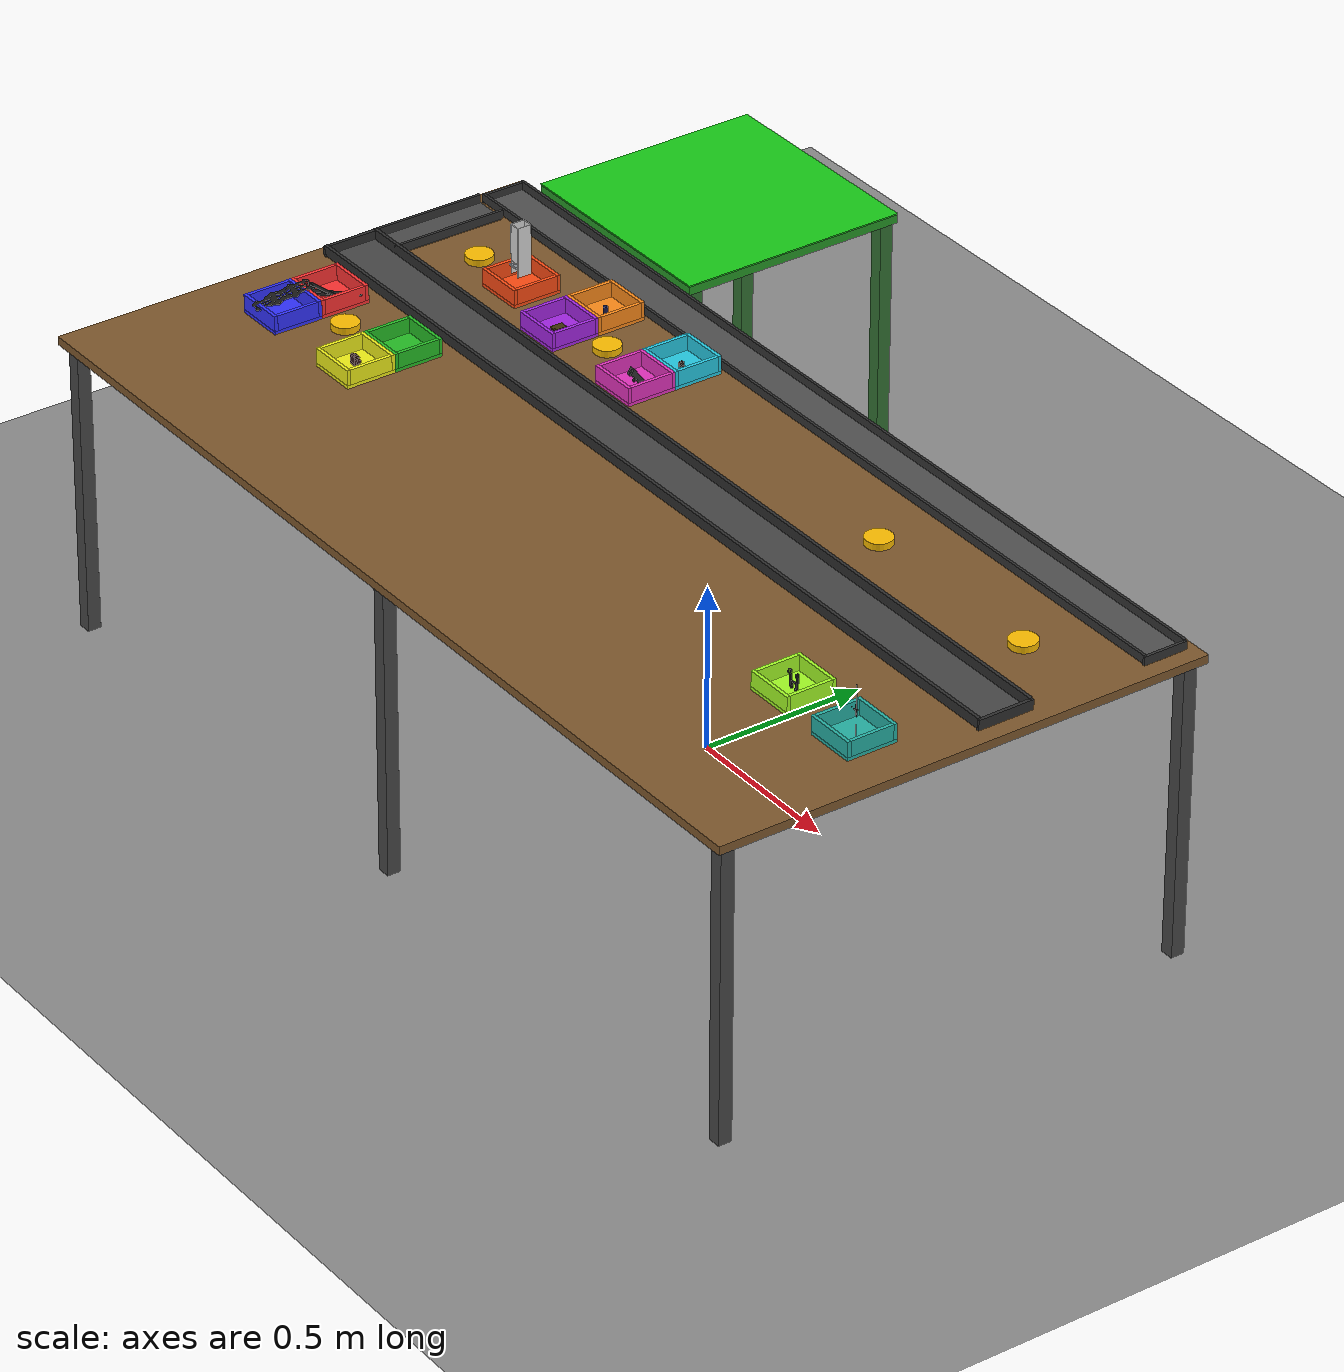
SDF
<sdf version="1.10">
 <world name="frame_assembly_cell">
  <physics name="2ms" type="ignored">
   <max_step_size>0.002</max_step_size>
   <real_time_factor>1.0</real_time_factor>
  </physics>
  <plugin filename="gz-sim-physics-system" name="gz::sim::systems::Physics"/>
  <plugin filename="gz-sim-user-commands-system" name="gz::sim::systems::UserCommands"/>
  <plugin filename="gz-sim-scene-broadcaster-system" name="gz::sim::systems::SceneBroadcaster"/>
  <plugin filename="gz-sim-sensors-system" name="gz::sim::systems::Sensors">
   <render_engine>ogre2</render_engine>
  </plugin>
  <light type="directional" name="sun">
   <pose>0 0 10 0 0 0</pose>
   <diffuse>0.8 0.8 0.8 1</diffuse>
   <specular>0.2 0.2 0.2 1</specular>
   <direction>-0.5 0.1 -0.9</direction>
  </light>
  <model name="ground_plane">
   <static>true</static>
   <link name="link">
    <collision name="collision">
     <geometry><plane><normal>0 0 1</normal><size>30 30</size></plane></geometry>
    </collision>
    <visual name="visual">
     <geometry><plane><normal>0 0 1</normal><size>30 30</size></plane></geometry>
     <material><ambient>0.38 0.38 0.38 1</ambient><diffuse>0.55 0.55 0.55 1</diffuse></material>
    </visual>
   </link>
  </model>
  <include><uri>model://assembly_table</uri><name>assembly_table</name></include>
  <include><uri>model://conveyor_main</uri><name>conveyor_main</name><pose>0 -0.15 0.900 0 0 0</pose></include>
  <include>
   <uri>model://conveyor_return</uri>
   <name>conveyor_return</name>
   <pose>0 0.35 0.900 0 0 0</pose>
  </include>
  <include><uri>model://conveyor_side</uri><name>conveyor_side</name><pose>-1.4 0.1 0.900 0 0 0</pose></include>
  <include><uri>model://finished_area</uri><name>finished_area</name><pose>-1.1 0.825 0 0 0 0</pose></include>
  <include><uri>model://screw_feeder</uri><name>screw_feeder</name><pose>-1.0 0.1 0.950 0 0 0</pose></include>
  <model name="station_marker_1">
   <static>true</static>
   <pose>-1.2 0.1 0.900 0 0 0</pose>
   <link name="disc">
    <pose>0 0 0.010 0 0 0</pose>
    <collision name="col">
     <geometry><cylinder><radius>0.04</radius><length>0.020</length></cylinder></geometry>
    </collision>
    <visual name="vis">
     <geometry><cylinder><radius>0.04</radius><length>0.020</length></cylinder></geometry>
     <material><ambient>0.80 0.60 0.00 1</ambient><diffuse>1.00 0.75 0.00 1</diffuse></material>
    </visual>
   </link>
  </model>
  <model name="station_marker_2">
   <static>true</static>
   <pose>-1.1 -0.4 0.900 0 0 0</pose>
   <link name="disc">
    <pose>0 0 0.010 0 0 0</pose>
    <collision name="col">
     <geometry><cylinder><radius>0.04</radius><length>0.020</length></cylinder></geometry>
    </collision>
    <visual name="vis">
     <geometry><cylinder><radius>0.04</radius><length>0.020</length></cylinder></geometry>
     <material><ambient>0.80 0.60 0.00 1</ambient><diffuse>1.00 0.75 0.00 1</diffuse></material>
    </visual>
   </link>
  </model>
  <model name="station_marker_3">
   <static>true</static>
   <pose>-0.6 0.1 0.900 0 0 0</pose>
   <link name="disc">
    <pose>0 0 0.010 0 0 0</pose>
    <collision name="col">
     <geometry><cylinder><radius>0.04</radius><length>0.020</length></cylinder></geometry>
    </collision>
    <visual name="vis">
     <geometry><cylinder><radius>0.04</radius><length>0.020</length></cylinder></geometry>
     <material><ambient>0.80 0.60 0.00 1</ambient><diffuse>1.00 0.75 0.00 1</diffuse></material>
    </visual>
   </link>
  </model>
  <model name="station_marker_4">
   <static>true</static>
   <pose>0.6 0.1 0.900 0 0 0</pose>
   <link name="disc">
    <pose>0 0 0.010 0 0 0</pose>
    <collision name="col">
     <geometry><cylinder><radius>0.04</radius><length>0.020</length></cylinder></geometry>
    </collision>
    <visual name="vis">
     <geometry><cylinder><radius>0.04</radius><length>0.020</length></cylinder></geometry>
     <material><ambient>0.80 0.60 0.00 1</ambient><diffuse>1.00 0.75 0.00 1</diffuse></material>
    </visual>
   </link>
  </model>
  <model name="station_marker_5">
   <static>true</static>
   <pose>1.2 0.1 0.900 0 0 0</pose>
   <link name="disc">
    <pose>0 0 0.010 0 0 0</pose>
    <collision name="col">
     <geometry><cylinder><radius>0.04</radius><length>0.020</length></cylinder></geometry>
    </collision>
    <visual name="vis">
     <geometry><cylinder><radius>0.04</radius><length>0.020</length></cylinder></geometry>
     <material><ambient>0.80 0.60 0.00 1</ambient><diffuse>1.00 0.75 0.00 1</diffuse></material>
    </visual>
   </link>
  </model>
  <model name="bin_A">
   <static>true</static>
   <pose>-1.25 -0.35 0.900 0 0 0</pose>
   <link name="floor">
    <pose>0 0 0.005 0 0 0</pose>
    <collision name="col"><geometry><box><size>0.15 0.15 0.010</size></box></geometry></collision>
    <visual name="vis">
     <geometry><box><size>0.15 0.15 0.010</size></box></geometry>
     <material><ambient>0.80 0.10 0.10 1</ambient><diffuse>1.00 0.20 0.20 1</diffuse></material>
    </visual>
   </link>
   <link name="wall_front">
    <pose>0 -0.070 0.0325 0 0 0</pose>
    <collision name="col"><geometry><box><size>0.15 0.010 0.045</size></box></geometry></collision>
    <visual name="vis">
     <geometry><box><size>0.15 0.010 0.045</size></box></geometry>
     <material><ambient>0.80 0.10 0.10 1</ambient><diffuse>1.00 0.20 0.20 1</diffuse></material>
    </visual>
   </link>
   <link name="wall_back">
    <pose>0 0.070 0.0325 0 0 0</pose>
    <collision name="col"><geometry><box><size>0.15 0.010 0.045</size></box></geometry></collision>
    <visual name="vis">
     <geometry><box><size>0.15 0.010 0.045</size></box></geometry>
     <material><ambient>0.80 0.10 0.10 1</ambient><diffuse>1.00 0.20 0.20 1</diffuse></material>
    </visual>
   </link>
   <link name="wall_left">
    <pose>-0.070 0 0.0325 0 0 0</pose>
    <collision name="col"><geometry><box><size>0.010 0.130 0.045</size></box></geometry></collision>
    <visual name="vis">
     <geometry><box><size>0.010 0.130 0.045</size></box></geometry>
     <material><ambient>0.80 0.10 0.10 1</ambient><diffuse>1.00 0.20 0.20 1</diffuse></material>
    </visual>
   </link>
   <link name="wall_right">
    <pose>0.070 0 0.0325 0 0 0</pose>
    <collision name="col"><geometry><box><size>0.010 0.130 0.045</size></box></geometry></collision>
    <visual name="vis">
     <geometry><box><size>0.010 0.130 0.045</size></box></geometry>
     <material><ambient>0.80 0.10 0.10 1</ambient><diffuse>1.00 0.20 0.20 1</diffuse></material>
    </visual>
   </link>
  </model>
  <model name="bin_B">
   <static>true</static>
   <pose>-1.25 -0.5 0.900 0 0 0</pose>
   <link name="floor">
    <pose>0 0 0.005 0 0 0</pose>
    <collision name="col"><geometry><box><size>0.15 0.15 0.010</size></box></geometry></collision>
    <visual name="vis">
     <geometry><box><size>0.15 0.15 0.010</size></box></geometry>
     <material><ambient>0.10 0.10 0.80 1</ambient><diffuse>0.20 0.20 1.00 1</diffuse></material>
    </visual>
   </link>
   <link name="wall_front">
    <pose>0 -0.070 0.0325 0 0 0</pose>
    <collision name="col"><geometry><box><size>0.15 0.010 0.045</size></box></geometry></collision>
    <visual name="vis">
     <geometry><box><size>0.15 0.010 0.045</size></box></geometry>
     <material><ambient>0.10 0.10 0.80 1</ambient><diffuse>0.20 0.20 1.00 1</diffuse></material>
    </visual>
   </link>
   <link name="wall_back">
    <pose>0 0.070 0.0325 0 0 0</pose>
    <collision name="col"><geometry><box><size>0.15 0.010 0.045</size></box></geometry></collision>
    <visual name="vis">
     <geometry><box><size>0.15 0.010 0.045</size></box></geometry>
     <material><ambient>0.10 0.10 0.80 1</ambient><diffuse>0.20 0.20 1.00 1</diffuse></material>
    </visual>
   </link>
   <link name="wall_left">
    <pose>-0.070 0 0.0325 0 0 0</pose>
    <collision name="col"><geometry><box><size>0.010 0.130 0.045</size></box></geometry></collision>
    <visual name="vis">
     <geometry><box><size>0.010 0.130 0.045</size></box></geometry>
     <material><ambient>0.10 0.10 0.80 1</ambient><diffuse>0.20 0.20 1.00 1</diffuse></material>
    </visual>
   </link>
   <link name="wall_right">
    <pose>0.070 0 0.0325 0 0 0</pose>
    <collision name="col"><geometry><box><size>0.010 0.130 0.045</size></box></geometry></collision>
    <visual name="vis">
     <geometry><box><size>0.010 0.130 0.045</size></box></geometry>
     <material><ambient>0.10 0.10 0.80 1</ambient><diffuse>0.20 0.20 1.00 1</diffuse></material>
    </visual>
   </link>
  </model>
  <model name="bin_C">
   <static>true</static>
   <pose>-0.9 -0.35 0.900 0 0 0</pose>
   <link name="floor">
    <pose>0 0 0.005 0 0 0</pose>
    <collision name="col"><geometry><box><size>0.15 0.15 0.010</size></box></geometry></collision>
    <visual name="vis">
     <geometry><box><size>0.15 0.15 0.010</size></box></geometry>
     <material><ambient>0.10 0.55 0.10 1</ambient><diffuse>0.15 0.75 0.15 1</diffuse></material>
    </visual>
   </link>
   <link name="wall_front">
    <pose>0 -0.070 0.0325 0 0 0</pose>
    <collision name="col"><geometry><box><size>0.15 0.010 0.045</size></box></geometry></collision>
    <visual name="vis">
     <geometry><box><size>0.15 0.010 0.045</size></box></geometry>
     <material><ambient>0.10 0.55 0.10 1</ambient><diffuse>0.15 0.75 0.15 1</diffuse></material>
    </visual>
   </link>
   <link name="wall_back">
    <pose>0 0.070 0.0325 0 0 0</pose>
    <collision name="col"><geometry><box><size>0.15 0.010 0.045</size></box></geometry></collision>
    <visual name="vis">
     <geometry><box><size>0.15 0.010 0.045</size></box></geometry>
     <material><ambient>0.10 0.55 0.10 1</ambient><diffuse>0.15 0.75 0.15 1</diffuse></material>
    </visual>
   </link>
   <link name="wall_left">
    <pose>-0.070 0 0.0325 0 0 0</pose>
    <collision name="col"><geometry><box><size>0.010 0.130 0.045</size></box></geometry></collision>
    <visual name="vis">
     <geometry><box><size>0.010 0.130 0.045</size></box></geometry>
     <material><ambient>0.10 0.55 0.10 1</ambient><diffuse>0.15 0.75 0.15 1</diffuse></material>
    </visual>
   </link>
   <link name="wall_right">
    <pose>0.070 0 0.0325 0 0 0</pose>
    <collision name="col"><geometry><box><size>0.010 0.130 0.045</size></box></geometry></collision>
    <visual name="vis">
     <geometry><box><size>0.010 0.130 0.045</size></box></geometry>
     <material><ambient>0.10 0.55 0.10 1</ambient><diffuse>0.15 0.75 0.15 1</diffuse></material>
    </visual>
   </link>
  </model>
  <model name="bin_D">
   <static>true</static>
   <pose>-0.9 -0.5 0.900 0 0 0</pose>
   <link name="floor">
    <pose>0 0 0.005 0 0 0</pose>
    <collision name="col"><geometry><box><size>0.15 0.15 0.010</size></box></geometry></collision>
    <visual name="vis">
     <geometry><box><size>0.15 0.15 0.010</size></box></geometry>
     <material><ambient>0.75 0.75 0.05 1</ambient><diffuse>0.95 0.95 0.10 1</diffuse></material>
    </visual>
   </link>
   <link name="wall_front">
    <pose>0 -0.070 0.0325 0 0 0</pose>
    <collision name="col"><geometry><box><size>0.15 0.010 0.045</size></box></geometry></collision>
    <visual name="vis">
     <geometry><box><size>0.15 0.010 0.045</size></box></geometry>
     <material><ambient>0.75 0.75 0.05 1</ambient><diffuse>0.95 0.95 0.10 1</diffuse></material>
    </visual>
   </link>
   <link name="wall_back">
    <pose>0 0.070 0.0325 0 0 0</pose>
    <collision name="col"><geometry><box><size>0.15 0.010 0.045</size></box></geometry></collision>
    <visual name="vis">
     <geometry><box><size>0.15 0.010 0.045</size></box></geometry>
     <material><ambient>0.75 0.75 0.05 1</ambient><diffuse>0.95 0.95 0.10 1</diffuse></material>
    </visual>
   </link>
   <link name="wall_left">
    <pose>-0.070 0 0.0325 0 0 0</pose>
    <collision name="col"><geometry><box><size>0.010 0.130 0.045</size></box></geometry></collision>
    <visual name="vis">
     <geometry><box><size>0.010 0.130 0.045</size></box></geometry>
     <material><ambient>0.75 0.75 0.05 1</ambient><diffuse>0.95 0.95 0.10 1</diffuse></material>
    </visual>
   </link>
   <link name="wall_right">
    <pose>0.070 0 0.0325 0 0 0</pose>
    <collision name="col"><geometry><box><size>0.010 0.130 0.045</size></box></geometry></collision>
    <visual name="vis">
     <geometry><box><size>0.010 0.130 0.045</size></box></geometry>
     <material><ambient>0.75 0.75 0.05 1</ambient><diffuse>0.95 0.95 0.10 1</diffuse></material>
    </visual>
   </link>
  </model>
  <model name="bin_E">
   <static>true</static>
   <pose>-0.75 0.2 0.900 0 0 0</pose>
   <link name="floor">
    <pose>0 0 0.005 0 0 0</pose>
    <collision name="col"><geometry><box><size>0.15 0.15 0.010</size></box></geometry></collision>
    <visual name="vis">
     <geometry><box><size>0.15 0.15 0.010</size></box></geometry>
     <material><ambient>0.80 0.42 0.05 1</ambient><diffuse>1.00 0.55 0.10 1</diffuse></material>
    </visual>
   </link>
   <link name="wall_front">
    <pose>0 -0.070 0.0325 0 0 0</pose>
    <collision name="col"><geometry><box><size>0.15 0.010 0.045</size></box></geometry></collision>
    <visual name="vis">
     <geometry><box><size>0.15 0.010 0.045</size></box></geometry>
     <material><ambient>0.80 0.42 0.05 1</ambient><diffuse>1.00 0.55 0.10 1</diffuse></material>
    </visual>
   </link>
   <link name="wall_back">
    <pose>0 0.070 0.0325 0 0 0</pose>
    <collision name="col"><geometry><box><size>0.15 0.010 0.045</size></box></geometry></collision>
    <visual name="vis">
     <geometry><box><size>0.15 0.010 0.045</size></box></geometry>
     <material><ambient>0.80 0.42 0.05 1</ambient><diffuse>1.00 0.55 0.10 1</diffuse></material>
    </visual>
   </link>
   <link name="wall_left">
    <pose>-0.070 0 0.0325 0 0 0</pose>
    <collision name="col"><geometry><box><size>0.010 0.130 0.045</size></box></geometry></collision>
    <visual name="vis">
     <geometry><box><size>0.010 0.130 0.045</size></box></geometry>
     <material><ambient>0.80 0.42 0.05 1</ambient><diffuse>1.00 0.55 0.10 1</diffuse></material>
    </visual>
   </link>
   <link name="wall_right">
    <pose>0.070 0 0.0325 0 0 0</pose>
    <collision name="col"><geometry><box><size>0.010 0.130 0.045</size></box></geometry></collision>
    <visual name="vis">
     <geometry><box><size>0.010 0.130 0.045</size></box></geometry>
     <material><ambient>0.80 0.42 0.05 1</ambient><diffuse>1.00 0.55 0.10 1</diffuse></material>
    </visual>
   </link>
  </model>
  <model name="bin_F">
   <static>true</static>
   <pose>-0.75 0.05 0.900 0 0 0</pose>
   <link name="floor">
    <pose>0 0 0.005 0 0 0</pose>
    <collision name="col"><geometry><box><size>0.15 0.15 0.010</size></box></geometry></collision>
    <visual name="vis">
     <geometry><box><size>0.15 0.15 0.010</size></box></geometry>
     <material><ambient>0.50 0.10 0.70 1</ambient><diffuse>0.65 0.15 0.90 1</diffuse></material>
    </visual>
   </link>
   <link name="wall_front">
    <pose>0 -0.070 0.0325 0 0 0</pose>
    <collision name="col"><geometry><box><size>0.15 0.010 0.045</size></box></geometry></collision>
    <visual name="vis">
     <geometry><box><size>0.15 0.010 0.045</size></box></geometry>
     <material><ambient>0.50 0.10 0.70 1</ambient><diffuse>0.65 0.15 0.90 1</diffuse></material>
    </visual>
   </link>
   <link name="wall_back">
    <pose>0 0.070 0.0325 0 0 0</pose>
    <collision name="col"><geometry><box><size>0.15 0.010 0.045</size></box></geometry></collision>
    <visual name="vis">
     <geometry><box><size>0.15 0.010 0.045</size></box></geometry>
     <material><ambient>0.50 0.10 0.70 1</ambient><diffuse>0.65 0.15 0.90 1</diffuse></material>
    </visual>
   </link>
   <link name="wall_left">
    <pose>-0.070 0 0.0325 0 0 0</pose>
    <collision name="col"><geometry><box><size>0.010 0.130 0.045</size></box></geometry></collision>
    <visual name="vis">
     <geometry><box><size>0.010 0.130 0.045</size></box></geometry>
     <material><ambient>0.50 0.10 0.70 1</ambient><diffuse>0.65 0.15 0.90 1</diffuse></material>
    </visual>
   </link>
   <link name="wall_right">
    <pose>0.070 0 0.0325 0 0 0</pose>
    <collision name="col"><geometry><box><size>0.010 0.130 0.045</size></box></geometry></collision>
    <visual name="vis">
     <geometry><box><size>0.010 0.130 0.045</size></box></geometry>
     <material><ambient>0.50 0.10 0.70 1</ambient><diffuse>0.65 0.15 0.90 1</diffuse></material>
    </visual>
   </link>
  </model>
  <model name="bin_G">
   <static>true</static>
   <pose>-0.4 0.2 0.900 0 0 0</pose>
   <link name="floor">
    <pose>0 0 0.005 0 0 0</pose>
    <collision name="col"><geometry><box><size>0.15 0.15 0.010</size></box></geometry></collision>
    <visual name="vis">
     <geometry><box><size>0.15 0.15 0.010</size></box></geometry>
     <material><ambient>0.10 0.60 0.70 1</ambient><diffuse>0.15 0.80 0.90 1</diffuse></material>
    </visual>
   </link>
   <link name="wall_front">
    <pose>0 -0.070 0.0325 0 0 0</pose>
    <collision name="col"><geometry><box><size>0.15 0.010 0.045</size></box></geometry></collision>
    <visual name="vis">
     <geometry><box><size>0.15 0.010 0.045</size></box></geometry>
     <material><ambient>0.10 0.60 0.70 1</ambient><diffuse>0.15 0.80 0.90 1</diffuse></material>
    </visual>
   </link>
   <link name="wall_back">
    <pose>0 0.070 0.0325 0 0 0</pose>
    <collision name="col"><geometry><box><size>0.15 0.010 0.045</size></box></geometry></collision>
    <visual name="vis">
     <geometry><box><size>0.15 0.010 0.045</size></box></geometry>
     <material><ambient>0.10 0.60 0.70 1</ambient><diffuse>0.15 0.80 0.90 1</diffuse></material>
    </visual>
   </link>
   <link name="wall_left">
    <pose>-0.070 0 0.0325 0 0 0</pose>
    <collision name="col"><geometry><box><size>0.010 0.130 0.045</size></box></geometry></collision>
    <visual name="vis">
     <geometry><box><size>0.010 0.130 0.045</size></box></geometry>
     <material><ambient>0.10 0.60 0.70 1</ambient><diffuse>0.15 0.80 0.90 1</diffuse></material>
    </visual>
   </link>
   <link name="wall_right">
    <pose>0.070 0 0.0325 0 0 0</pose>
    <collision name="col"><geometry><box><size>0.010 0.130 0.045</size></box></geometry></collision>
    <visual name="vis">
     <geometry><box><size>0.010 0.130 0.045</size></box></geometry>
     <material><ambient>0.10 0.60 0.70 1</ambient><diffuse>0.15 0.80 0.90 1</diffuse></material>
    </visual>
   </link>
  </model>
  <model name="bin_H">
   <static>true</static>
   <pose>-0.4 0.05 0.900 0 0 0</pose>
   <link name="floor">
    <pose>0 0 0.005 0 0 0</pose>
    <collision name="col"><geometry><box><size>0.15 0.15 0.010</size></box></geometry></collision>
    <visual name="vis">
     <geometry><box><size>0.15 0.15 0.010</size></box></geometry>
     <material><ambient>0.75 0.10 0.60 1</ambient><diffuse>0.90 0.20 0.75 1</diffuse></material>
    </visual>
   </link>
   <link name="wall_front">
    <pose>0 -0.070 0.0325 0 0 0</pose>
    <collision name="col"><geometry><box><size>0.15 0.010 0.045</size></box></geometry></collision>
    <visual name="vis">
     <geometry><box><size>0.15 0.010 0.045</size></box></geometry>
     <material><ambient>0.75 0.10 0.60 1</ambient><diffuse>0.90 0.20 0.75 1</diffuse></material>
    </visual>
   </link>
   <link name="wall_back">
    <pose>0 0.070 0.0325 0 0 0</pose>
    <collision name="col"><geometry><box><size>0.15 0.010 0.045</size></box></geometry></collision>
    <visual name="vis">
     <geometry><box><size>0.15 0.010 0.045</size></box></geometry>
     <material><ambient>0.75 0.10 0.60 1</ambient><diffuse>0.90 0.20 0.75 1</diffuse></material>
    </visual>
   </link>
   <link name="wall_left">
    <pose>-0.070 0 0.0325 0 0 0</pose>
    <collision name="col"><geometry><box><size>0.010 0.130 0.045</size></box></geometry></collision>
    <visual name="vis">
     <geometry><box><size>0.010 0.130 0.045</size></box></geometry>
     <material><ambient>0.75 0.10 0.60 1</ambient><diffuse>0.90 0.20 0.75 1</diffuse></material>
    </visual>
   </link>
   <link name="wall_right">
    <pose>0.070 0 0.0325 0 0 0</pose>
    <collision name="col"><geometry><box><size>0.010 0.130 0.045</size></box></geometry></collision>
    <visual name="vis">
     <geometry><box><size>0.010 0.130 0.045</size></box></geometry>
     <material><ambient>0.75 0.10 0.60 1</ambient><diffuse>0.90 0.20 0.75 1</diffuse></material>
    </visual>
   </link>
  </model>
  <model name="bin_I">
   <static>true</static>
   <pose>1.05 -0.50 0.900 0 0 0</pose>
   <link name="floor">
    <pose>0 0 0.005 0 0 0</pose>
    <collision name="col"><geometry><box><size>0.15 0.15 0.010</size></box></geometry></collision>
    <visual name="vis">
     <geometry><box><size>0.15 0.15 0.010</size></box></geometry>
     <material><ambient>0.50 0.80 0.10 1</ambient><diffuse>0.65 1.00 0.15 1</diffuse></material>
    </visual>
   </link>
   <link name="wall_front">
    <pose>0 -0.070 0.0325 0 0 0</pose>
    <collision name="col"><geometry><box><size>0.15 0.010 0.045</size></box></geometry></collision>
    <visual name="vis">
     <geometry><box><size>0.15 0.010 0.045</size></box></geometry>
     <material><ambient>0.50 0.80 0.10 1</ambient><diffuse>0.65 1.00 0.15 1</diffuse></material>
    </visual>
   </link>
   <link name="wall_back">
    <pose>0 0.070 0.0325 0 0 0</pose>
    <collision name="col"><geometry><box><size>0.15 0.010 0.045</size></box></geometry></collision>
    <visual name="vis">
     <geometry><box><size>0.15 0.010 0.045</size></box></geometry>
     <material><ambient>0.50 0.80 0.10 1</ambient><diffuse>0.65 1.00 0.15 1</diffuse></material>
    </visual>
   </link>
   <link name="wall_left">
    <pose>-0.070 0 0.0325 0 0 0</pose>
    <collision name="col"><geometry><box><size>0.010 0.130 0.045</size></box></geometry></collision>
    <visual name="vis">
     <geometry><box><size>0.010 0.130 0.045</size></box></geometry>
     <material><ambient>0.50 0.80 0.10 1</ambient><diffuse>0.65 1.00 0.15 1</diffuse></material>
    </visual>
   </link>
   <link name="wall_right">
    <pose>0.070 0 0.0325 0 0 0</pose>
    <collision name="col"><geometry><box><size>0.010 0.130 0.045</size></box></geometry></collision>
    <visual name="vis">
     <geometry><box><size>0.010 0.130 0.045</size></box></geometry>
     <material><ambient>0.50 0.80 0.10 1</ambient><diffuse>0.65 1.00 0.15 1</diffuse></material>
    </visual>
   </link>
  </model>
  <model name="bin_J">
   <static>true</static>
   <pose>1.3 -0.50 0.900 0 0 0</pose>
   <link name="floor">
    <pose>0 0 0.005 0 0 0</pose>
    <collision name="col"><geometry><box><size>0.15 0.15 0.010</size></box></geometry></collision>
    <visual name="vis">
     <geometry><box><size>0.15 0.15 0.010</size></box></geometry>
     <material><ambient>0.10 0.50 0.50 1</ambient><diffuse>0.15 0.70 0.65 1</diffuse></material>
    </visual>
   </link>
   <link name="wall_front">
    <pose>0 -0.070 0.0325 0 0 0</pose>
    <collision name="col"><geometry><box><size>0.15 0.010 0.045</size></box></geometry></collision>
    <visual name="vis">
     <geometry><box><size>0.15 0.010 0.045</size></box></geometry>
     <material><ambient>0.10 0.50 0.50 1</ambient><diffuse>0.15 0.70 0.65 1</diffuse></material>
    </visual>
   </link>
   <link name="wall_back">
    <pose>0 0.070 0.0325 0 0 0</pose>
    <collision name="col"><geometry><box><size>0.15 0.010 0.045</size></box></geometry></collision>
    <visual name="vis">
     <geometry><box><size>0.15 0.010 0.045</size></box></geometry>
     <material><ambient>0.10 0.50 0.50 1</ambient><diffuse>0.15 0.70 0.65 1</diffuse></material>
    </visual>
   </link>
   <link name="wall_left">
    <pose>-0.070 0 0.0325 0 0 0</pose>
    <collision name="col"><geometry><box><size>0.010 0.130 0.045</size></box></geometry></collision>
    <visual name="vis">
     <geometry><box><size>0.010 0.130 0.045</size></box></geometry>
     <material><ambient>0.10 0.50 0.50 1</ambient><diffuse>0.15 0.70 0.65 1</diffuse></material>
    </visual>
   </link>
   <link name="wall_right">
    <pose>0.070 0 0.0325 0 0 0</pose>
    <collision name="col"><geometry><box><size>0.010 0.130 0.045</size></box></geometry></collision>
    <visual name="vis">
     <geometry><box><size>0.010 0.130 0.045</size></box></geometry>
     <material><ambient>0.10 0.50 0.50 1</ambient><diffuse>0.15 0.70 0.65 1</diffuse></material>
    </visual>
   </link>
  </model>
  <model name="bin_screw">
   <static>true</static>
   <pose>-1.0 0.1 0.900 0 0 0</pose>
   <link name="floor">
    <pose>0 0 0.005 0 0 0</pose>
    <collision name="col"><geometry><box><size>0.15 0.15 0.010</size></box></geometry></collision>
    <visual name="vis">
     <geometry><box><size>0.15 0.15 0.010</size></box></geometry>
     <material><ambient>0.85 0.22 0.05 1</ambient><diffuse>1.00 0.30 0.08 1</diffuse></material>
    </visual>
   </link>
   <link name="wall_front">
    <pose>0 -0.070 0.0325 0 0 0</pose>
    <collision name="col"><geometry><box><size>0.15 0.010 0.045</size></box></geometry></collision>
    <visual name="vis">
     <geometry><box><size>0.15 0.010 0.045</size></box></geometry>
     <material><ambient>0.85 0.22 0.05 1</ambient><diffuse>1.00 0.30 0.08 1</diffuse></material>
    </visual>
   </link>
   <link name="wall_back">
    <pose>0 0.070 0.0325 0 0 0</pose>
    <collision name="col"><geometry><box><size>0.15 0.010 0.045</size></box></geometry></collision>
    <visual name="vis">
     <geometry><box><size>0.15 0.010 0.045</size></box></geometry>
     <material><ambient>0.85 0.22 0.05 1</ambient><diffuse>1.00 0.30 0.08 1</diffuse></material>
    </visual>
   </link>
   <link name="wall_left">
    <pose>-0.070 0 0.0325 0 0 0</pose>
    <collision name="col"><geometry><box><size>0.010 0.130 0.045</size></box></geometry></collision>
    <visual name="vis">
     <geometry><box><size>0.010 0.130 0.045</size></box></geometry>
     <material><ambient>0.85 0.22 0.05 1</ambient><diffuse>1.00 0.30 0.08 1</diffuse></material>
    </visual>
   </link>
   <link name="wall_right">
    <pose>0.070 0 0.0325 0 0 0</pose>
    <collision name="col"><geometry><box><size>0.010 0.130 0.045</size></box></geometry></collision>
    <visual name="vis">
     <geometry><box><size>0.010 0.130 0.045</size></box></geometry>
     <material><ambient>0.85 0.22 0.05 1</ambient><diffuse>1.00 0.30 0.08 1</diffuse></material>
    </visual>
   </link>
  </model>
  <include><uri>model://drone_single_arm</uri><name>arm_1</name><pose>-1.25 -0.35 0.913 0 0 0</pose></include>
  <include><uri>model://drone_single_arm</uri><name>arm_2</name><pose>-1.25 -0.35 0.918 0 0 0.5</pose></include>
  <include><uri>model://drone_single_arm</uri><name>arm_3</name><pose>-1.24 -0.34 0.923 0.2 0 0</pose></include>
  <include>
   <uri>model://drone_single_arm</uri>
   <name>arm_4</name>
   <pose>-1.26 -0.36 0.928 0 0 -0.4</pose>
  </include>
  <include>
   <uri>model://drone_bottom_plate</uri>
   <name>part_bottom_plate</name>
   <pose>-1.25 -0.50 0.962 0.15 0.35 0</pose>
  </include>
  <include>
   <uri>model://drone_speedybee_stack</uri>
   <name>part_speedybee_stack</name>
   <pose>-0.90 -0.50 0.929 0 0 0</pose>
  </include>
  <include>
   <uri>model://drone_capacitor</uri>
   <name>part_capacitor</name>
   <pose>-0.75 0.2 0.934 1.5708 0 0</pose>
  </include>
  <include><uri>model://drone_vtx</uri><name>part_vtx</name><pose>-0.75 0.05 0.915 0 0 0</pose></include>
  <include><uri>model://drone_camera</uri><name>part_camera</name><pose>-0.4 0.2 0.917 0 0 0</pose></include>
  <include>
   <uri>model://drone_vtx_antenna</uri>
   <name>part_vtx_antenna</name>
   <pose>-0.4 0.05 0.935 1.5708 0 0</pose>
  </include>
  <include>
   <uri>model://drone_rx_antenna</uri>
   <name>part_rx_antenna</name>
   <pose>1.05 -0.5 0.937 1.5708 0 0</pose>
  </include>
  <include>
   <uri>model://drone_tbs_antenna</uri>
   <name>part_tbs_antenna</name>
   <pose>1.3 -0.5 0.986 1.5708 0 0</pose>
  </include>
 </world>
</sdf>

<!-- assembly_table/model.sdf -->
<sdf version="1.10">
  <!-- Assembly line table: 3.0m x 0.9m x 0.900m tall.
       Slab top surface sits at z=0.900 in model frame.
       Include in world at (0,0,0). -->
  <model name="assembly_table">
    <static>true</static>

    <!-- Table top slab: 3.0 x 0.9 x 0.025m, top at z=0.900 -->
    <link name="top">
      <pose>0 -0.3 0.8875 0 0 0</pose>
      <collision name="col">
        <geometry><box><size>3.0 1.5 0.025</size></box></geometry>
      </collision>
      <visual name="vis">
        <geometry><box><size>3.0 1.5 0.025</size></box></geometry>
        <material>
          <ambient>0.30 0.20 0.10 1</ambient>
          <diffuse>0.50 0.35 0.18 1</diffuse>
          <specular>0.05 0.05 0.05 1</specular>
        </material>
      </visual>
    </link>

    <!-- 6 legs in a 3x2 grid: x ∈ {-1.46, 0, +1.46}, y ∈ {-0.41, +0.41}
         Each leg: 0.04x0.04x0.875m, center at z=0.4375 -->
    <link name="leg_fl">
      <pose>-1.46 -1.01 0.4375 0 0 0</pose>
      <collision name="col"><geometry><box><size>0.04 0.04 0.875</size></box></geometry></collision>
      <visual name="vis">
        <geometry><box><size>0.04 0.04 0.875</size></box></geometry>
        <material><ambient>0.18 0.18 0.18 1</ambient><diffuse>0.28 0.28 0.28 1</diffuse></material>
      </visual>
    </link>
    <link name="leg_fr">
      <pose>-1.46  0.41 0.4375 0 0 0</pose>
      <collision name="col"><geometry><box><size>0.04 0.04 0.875</size></box></geometry></collision>
      <visual name="vis">
        <geometry><box><size>0.04 0.04 0.875</size></box></geometry>
        <material><ambient>0.18 0.18 0.18 1</ambient><diffuse>0.28 0.28 0.28 1</diffuse></material>
      </visual>
    </link>
    <link name="leg_ml">
      <pose>0.00 -1.01 0.4375 0 0 0</pose>
      <collision name="col"><geometry><box><size>0.04 0.04 0.875</size></box></geometry></collision>
      <visual name="vis">
        <geometry><box><size>0.04 0.04 0.875</size></box></geometry>
        <material><ambient>0.18 0.18 0.18 1</ambient><diffuse>0.28 0.28 0.28 1</diffuse></material>
      </visual>
    </link>
    <link name="leg_mr">
      <pose>0.00  0.41 0.4375 0 0 0</pose>
      <collision name="col"><geometry><box><size>0.04 0.04 0.875</size></box></geometry></collision>
      <visual name="vis">
        <geometry><box><size>0.04 0.04 0.875</size></box></geometry>
        <material><ambient>0.18 0.18 0.18 1</ambient><diffuse>0.28 0.28 0.28 1</diffuse></material>
      </visual>
    </link>
    <link name="leg_bl">
      <pose>1.46 -1.01 0.4375 0 0 0</pose>
      <collision name="col"><geometry><box><size>0.04 0.04 0.875</size></box></geometry></collision>
      <visual name="vis">
        <geometry><box><size>0.04 0.04 0.875</size></box></geometry>
        <material><ambient>0.18 0.18 0.18 1</ambient><diffuse>0.28 0.28 0.28 1</diffuse></material>
      </visual>
    </link>
    <link name="leg_br">
      <pose>1.46  0.41 0.4375 0 0 0</pose>
      <collision name="col"><geometry><box><size>0.04 0.04 0.875</size></box></geometry></collision>
      <visual name="vis">
        <geometry><box><size>0.04 0.04 0.875</size></box></geometry>
        <material><ambient>0.18 0.18 0.18 1</ambient><diffuse>0.28 0.28 0.28 1</diffuse></material>
      </visual>
    </link>

  </model>
</sdf>

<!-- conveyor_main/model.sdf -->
<sdf version="1.10">
  <model name="conveyor_main">
    <static>true</static>

    <!-- Belt surface -->
    <link name="belt">
      <pose>0 0 0.004 0 0 0</pose>
      <collision name="col">
        <geometry><box><size>2.9 0.15 0.008</size></box></geometry>
      </collision>
      <visual name="vis">
        <geometry><box><size>2.9 0.15 0.008</size></box></geometry>
        <material>
          <ambient>0.18 0.18 0.18 1</ambient>
          <diffuse>0.28 0.28 0.28 1</diffuse>
          <specular>0.05 0.05 0.05 1</specular>
        </material>
      </visual>
    </link>

    <!-- Left rail (-Y side, robot-facing) -->
    <link name="rail_left">
      <pose>0 -0.080 0.023 0 0 0</pose>
      <collision name="col">
        <geometry><box><size>2.9 0.010 0.030</size></box></geometry>
      </collision>
      <visual name="vis">
        <geometry><box><size>2.9 0.010 0.030</size></box></geometry>
        <material>
          <ambient>0.10 0.10 0.10 1</ambient>
          <diffuse>0.18 0.18 0.18 1</diffuse>
          <specular>0.1 0.1 0.1 1</specular>
        </material>
      </visual>
    </link>

    <!-- Right rail (+Y side, return-conveyor side) -->
    <link name="rail_right">
      <pose>0 0.080 0.023 0 0 0</pose>
      <collision name="col">
        <geometry><box><size>2.9 0.010 0.030</size></box></geometry>
      </collision>
      <visual name="vis">
        <geometry><box><size>2.9 0.010 0.030</size></box></geometry>
        <material>
          <ambient>0.10 0.10 0.10 1</ambient>
          <diffuse>0.18 0.18 0.18 1</diffuse>
          <specular>0.1 0.1 0.1 1</specular>
        </material>
      </visual>
    </link>

    <!-- Left end cap -->
    <link name="cap_left">
      <pose>-1.45 0 0.019 0 0 0</pose>
      <collision name="col">
        <geometry><box><size>0.010 0.170 0.030</size></box></geometry>
      </collision>
      <visual name="vis">
        <geometry><box><size>0.010 0.170 0.030</size></box></geometry>
        <material>
          <ambient>0.10 0.10 0.10 1</ambient>
          <diffuse>0.18 0.18 0.18 1</diffuse>
        </material>
      </visual>
    </link>

    <!-- Right end cap -->
    <link name="cap_right">
      <pose>1.45 0 0.019 0 0 0</pose>
      <collision name="col">
        <geometry><box><size>0.010 0.170 0.030</size></box></geometry>
      </collision>
      <visual name="vis">
        <geometry><box><size>0.010 0.170 0.030</size></box></geometry>
        <material>
          <ambient>0.10 0.10 0.10 1</ambient>
          <diffuse>0.18 0.18 0.18 1</diffuse>
        </material>
      </visual>
    </link>

  </model>
</sdf>

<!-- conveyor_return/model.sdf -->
<sdf version="1.10">
  <model name="conveyor_return">
    <static>true</static>

    <link name="belt">
      <pose>0 0 0.004 0 0 0</pose>
      <collision name="col">
        <geometry><box><size>2.9 0.12 0.008</size></box></geometry>
      </collision>
      <visual name="vis">
        <geometry><box><size>2.9 0.12 0.008</size></box></geometry>
        <material>
          <ambient>0.22 0.22 0.22 1</ambient>
          <diffuse>0.32 0.32 0.32 1</diffuse>
          <specular>0.05 0.05 0.05 1</specular>
        </material>
      </visual>
    </link>

    <link name="rail_front">
      <pose>0 -0.064 0.0205 0 0 0</pose>
      <collision name="col">
        <geometry><box><size>2.9 0.008 0.025</size></box></geometry>
      </collision>
      <visual name="vis">
        <geometry><box><size>2.9 0.008 0.025</size></box></geometry>
        <material>
          <ambient>0.12 0.12 0.12 1</ambient>
          <diffuse>0.20 0.20 0.20 1</diffuse>
        </material>
      </visual>
    </link>

    <link name="rail_back">
      <pose>0 0.064 0.0205 0 0 0</pose>
      <collision name="col">
        <geometry><box><size>2.9 0.008 0.025</size></box></geometry>
      </collision>
      <visual name="vis">
        <geometry><box><size>2.9 0.008 0.025</size></box></geometry>
        <material>
          <ambient>0.12 0.12 0.12 1</ambient>
          <diffuse>0.20 0.20 0.20 1</diffuse>
        </material>
      </visual>
    </link>

    <link name="cap_left">
      <pose>-1.45 0 0.0165 0 0 0</pose>
      <collision name="col">
        <geometry><box><size>0.008 0.136 0.025</size></box></geometry>
      </collision>
      <visual name="vis">
        <geometry><box><size>0.008 0.136 0.025</size></box></geometry>
        <material>
          <ambient>0.12 0.12 0.12 1</ambient>
          <diffuse>0.20 0.20 0.20 1</diffuse>
        </material>
      </visual>
    </link>

    <link name="cap_right">
      <pose>1.45 0 0.0165 0 0 0</pose>
      <collision name="col">
        <geometry><box><size>0.008 0.136 0.025</size></box></geometry>
      </collision>
      <visual name="vis">
        <geometry><box><size>0.008 0.136 0.025</size></box></geometry>
        <material>
          <ambient>0.12 0.12 0.12 1</ambient>
          <diffuse>0.20 0.20 0.20 1</diffuse>
        </material>
      </visual>
    </link>

  </model>
</sdf>

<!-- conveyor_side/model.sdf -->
<sdf version="1.10">
  <model name="conveyor_side">
    <static>true</static>

    <link name="belt">
      <pose>0 0 0.004 0 0 0</pose>
      <collision name="col">
        <geometry><box><size>0.10 0.35 0.008</size></box></geometry>
      </collision>
      <visual name="vis">
        <geometry><box><size>0.10 0.35 0.008</size></box></geometry>
        <material>
          <ambient>0.20 0.20 0.20 1</ambient>
          <diffuse>0.30 0.30 0.30 1</diffuse>
          <specular>0.05 0.05 0.05 1</specular>
        </material>
      </visual>
    </link>

    <!-- Rail on -X side (outward from table) -->
    <link name="rail_left">
      <pose>-0.054 0 0.0205 0 0 0</pose>
      <collision name="col">
        <geometry><box><size>0.008 0.35 0.025</size></box></geometry>
      </collision>
      <visual name="vis">
        <geometry><box><size>0.008 0.35 0.025</size></box></geometry>
        <material>
          <ambient>0.12 0.12 0.12 1</ambient>
          <diffuse>0.20 0.20 0.20 1</diffuse>
        </material>
      </visual>
    </link>

    <!-- Rail on +X side (toward table interior) -->
    <link name="rail_right">
      <pose>0.054 0 0.0205 0 0 0</pose>
      <collision name="col">
        <geometry><box><size>0.008 0.35 0.025</size></box></geometry>
      </collision>
      <visual name="vis">
        <geometry><box><size>0.008 0.35 0.025</size></box></geometry>
        <material>
          <ambient>0.12 0.12 0.12 1</ambient>
          <diffuse>0.20 0.20 0.20 1</diffuse>
        </material>
      </visual>
    </link>

  </model>
</sdf>

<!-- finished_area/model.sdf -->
<sdf version="1.10">
  <model name="finished_area">
    <static>true</static>

    <!-- Platform top slab: 0.7 x 0.7 x 0.025m, top at z=0.900 -->
    <link name="top">
      <pose>0 0 0.8875 0 0 0</pose>
      <collision name="col">
        <geometry><box><size>0.7 0.7 0.025</size></box></geometry>
      </collision>
      <visual name="vis">
        <geometry><box><size>0.7 0.7 0.025</size></box></geometry>
        <material>
          <ambient>0.10 0.40 0.10 1</ambient>
          <diffuse>0.15 0.60 0.15 1</diffuse>
          <specular>0.05 0.10 0.05 1</specular>
        </material>
      </visual>
    </link>

    <!-- 4 corner legs: 0.04x0.04x0.875m, center at z=0.4375 -->
    <link name="leg_fl">
      <pose>-0.32 -0.32 0.4375 0 0 0</pose>
      <collision name="col"><geometry><box><size>0.04 0.04 0.875</size></box></geometry></collision>
      <visual name="vis">
        <geometry><box><size>0.04 0.04 0.875</size></box></geometry>
        <material><ambient>0.15 0.30 0.15 1</ambient><diffuse>0.20 0.45 0.20 1</diffuse></material>
      </visual>
    </link>
    <link name="leg_fr">
      <pose>-0.32  0.32 0.4375 0 0 0</pose>
      <collision name="col"><geometry><box><size>0.04 0.04 0.875</size></box></geometry></collision>
      <visual name="vis">
        <geometry><box><size>0.04 0.04 0.875</size></box></geometry>
        <material><ambient>0.15 0.30 0.15 1</ambient><diffuse>0.20 0.45 0.20 1</diffuse></material>
      </visual>
    </link>
    <link name="leg_bl">
      <pose> 0.32 -0.32 0.4375 0 0 0</pose>
      <collision name="col"><geometry><box><size>0.04 0.04 0.875</size></box></geometry></collision>
      <visual name="vis">
        <geometry><box><size>0.04 0.04 0.875</size></box></geometry>
        <material><ambient>0.15 0.30 0.15 1</ambient><diffuse>0.20 0.45 0.20 1</diffuse></material>
      </visual>
    </link>
    <link name="leg_br">
      <pose> 0.32  0.32 0.4375 0 0 0</pose>
      <collision name="col"><geometry><box><size>0.04 0.04 0.875</size></box></geometry></collision>
      <visual name="vis">
        <geometry><box><size>0.04 0.04 0.875</size></box></geometry>
        <material><ambient>0.15 0.30 0.15 1</ambient><diffuse>0.20 0.45 0.20 1</diffuse></material>
      </visual>
    </link>

    <!-- Label ring on top surface to highlight finished-area -->
    <link name="border">
      <pose>0 0 0.902 0 0 0</pose>
      <visual name="vis">
        <geometry><box><size>0.7 0.7 0.004</size></box></geometry>
        <material>
          <ambient>0.05 0.55 0.05 1</ambient>
          <diffuse>0.10 0.80 0.10 1</diffuse>
        </material>
      </visual>
    </link>

  </model>
</sdf>

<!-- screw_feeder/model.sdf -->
<sdf version="1.9">
  <model name="screw_feeder">
    <static>true</static>

    <!-- Material shorthand: light gray -->
    <!-- ambient 0.75 0.75 0.75 / diffuse 0.85 0.85 0.85 -->

    <!-- ── Left wall (−x outer) ─────────────────────────────────── -->
    <link name="wall_left">
      <pose>-0.016 0 0.075 0 0 0</pose>
      <collision name="col">
        <geometry><box><size>0.002 0.044 0.150</size></box></geometry>
      </collision>
      <visual name="vis">
        <geometry><box><size>0.002 0.044 0.150</size></box></geometry>
        <material>
          <ambient>0.75 0.75 0.75 1</ambient>
          <diffuse>0.85 0.85 0.85 1</diffuse>
          <specular>0.3 0.3 0.3 1</specular>
        </material>
      </visual>
    </link>

    <!-- ── Right wall (+x outer) ────────────────────────────────── -->
    <link name="wall_right">
      <pose>0.016 0 0.075 0 0 0</pose>
      <collision name="col">
        <geometry><box><size>0.002 0.044 0.150</size></box></geometry>
      </collision>
      <visual name="vis">
        <geometry><box><size>0.002 0.044 0.150</size></box></geometry>
        <material>
          <ambient>0.75 0.75 0.75 1</ambient>
          <diffuse>0.85 0.85 0.85 1</diffuse>
          <specular>0.3 0.3 0.3 1</specular>
        </material>
      </visual>
    </link>

    <!-- ── Back wall (+y outer, full height) ────────────────────── -->
    <link name="wall_back">
      <pose>0 0.021 0.075 0 0 0</pose>
      <collision name="col">
        <geometry><box><size>0.034 0.002 0.150</size></box></geometry>
      </collision>
      <visual name="vis">
        <geometry><box><size>0.034 0.002 0.150</size></box></geometry>
        <material>
          <ambient>0.75 0.75 0.75 1</ambient>
          <diffuse>0.85 0.85 0.85 1</diffuse>
          <specular>0.3 0.3 0.3 1</specular>
        </material>
      </visual>
    </link>

    <!-- ── Front wall (−y outer, starts at z=0.040 — leaves 40 mm exit gap) -->
    <link name="wall_front">
      <!-- Center of this panel: z = (0.040 + 0.150) / 2 = 0.095; height = 0.110 -->
      <pose>0 -0.021 0.095 0 0 0</pose>
      <collision name="col">
        <geometry><box><size>0.034 0.002 0.110</size></box></geometry>
      </collision>
      <visual name="vis">
        <geometry><box><size>0.034 0.002 0.110</size></box></geometry>
        <material>
          <ambient>0.75 0.75 0.75 1</ambient>
          <diffuse>0.85 0.85 0.85 1</diffuse>
          <specular>0.3 0.3 0.3 1</specular>
        </material>
      </visual>
    </link>

    <!-- ── Pickup ramp ───────────────────────────────────────────── -->
    <link name="ramp">
      <pose>0 -0.008 0.022 -0.436 0 0</pose>
      <collision name="col">
        <geometry><box><size>0.028 0.050 0.004</size></box></geometry>
      </collision>
      <visual name="vis">
        <geometry><box><size>0.028 0.050 0.004</size></box></geometry>
        <material>
          <ambient>0.60 0.62 0.65 1</ambient>
          <diffuse>0.70 0.72 0.75 1</diffuse>
          <specular>0.4 0.4 0.4 1</specular>
        </material>
      </visual>
    </link>

  </model>
</sdf>

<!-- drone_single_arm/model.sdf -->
<sdf version="1.9">
  <model name="drone_single_arm">
    <link name="link">
      <inertial>
        <mass>0.09656</mass>
        <inertia>
          <ixx>6.54e-5</ixx>  <ixy>0</ixy>  <ixz>0</ixz>
          <iyy>1.45e-4</iyy>  <iyz>0</iyz>
          <izz>2.10e-4</izz>
        </inertia>
      </inertial>

      <collision name="collision">
        <geometry>
          <box><size>0.134103 0.090049 0.005000</size></box>
        </geometry>
      </collision>

      <visual name="visual">
        <!-- STL centre offset to align mesh with link origin -->
        <pose>-0.071942 -0.045024 -0.002503 0 0 0</pose>
        <geometry>
          <mesh>
            <uri>model://drone_single_arm/meshes/single_arm.stl</uri>
            <scale>0.001 0.001 0.001</scale>
          </mesh>
        </geometry>
        <material>
          <ambient>0.05 0.05 0.05 1</ambient>
          <diffuse>0.10 0.10 0.10 1</diffuse>
          <specular>0.3 0.3 0.3 1</specular>
        </material>
      </visual>
    </link>
  </model>
</sdf>

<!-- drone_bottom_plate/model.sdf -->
<sdf version="1.9">
  <model name="drone_bottom_plate">
    <link name="link">
      <inertial>
        <mass>0.03504</mass>
        <inertia>
          <ixx>9.11e-5</ixx>  <ixy>0</ixy>  <ixz>0</ixz>
          <iyy>7.20e-6</iyy>  <iyz>0</iyz>
          <izz>9.82e-5</izz>
        </inertia>
      </inertial>

      <collision name="collision">
        <geometry>
          <box><size>0.0496 0.1766 0.0025</size></box>
        </geometry>
      </collision>

      <visual name="visual">
        <pose>-0.024800 -0.088300 -0.001250 0 0 0</pose>
        <geometry>
          <mesh>
            <uri>model://drone_bottom_plate/meshes/bottom_plate.stl</uri>
            <scale>1 1 1</scale>
          </mesh>
        </geometry>
        <material>
          <ambient>0.05 0.05 0.05 1</ambient>
          <diffuse>0.10 0.10 0.10 1</diffuse>
          <specular>0.3 0.3 0.3 1</specular>
        </material>
      </visual>
    </link>
  </model>
</sdf>

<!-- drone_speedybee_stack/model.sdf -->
<sdf version="1.9">
  <model name="drone_speedybee_stack">
    <link name="link">
      <inertial>
        <mass>0.02080</mass>
        <inertia>
          <ixx>2.82e-6</ixx>  <ixy>0</ixy>  <ixz>0</ixz>
          <iyy>4.24e-6</iyy>  <iyz>0</iyz>
          <izz>2.13e-6</izz>
        </inertia>
      </inertial>

      <collision name="collision">
        <geometry>
          <box><size>0.032018 0.014360 0.037681</size></box>
        </geometry>
      </collision>

      <visual name="visual">
        <pose>-0.016159 -0.007200 -0.019035 0 0 0</pose>
        <geometry>
          <mesh>
            <uri>model://drone_speedybee_stack/meshes/speedybee_stack.stl</uri>
            <scale>0.001 0.001 0.001</scale>
          </mesh>
        </geometry>
        <material>
          <ambient>0.08 0.05 0.05 1</ambient>
          <diffuse>0.20 0.10 0.10 1</diffuse>
          <specular>0.2 0.2 0.2 1</specular>
        </material>
      </visual>
    </link>
  </model>
</sdf>

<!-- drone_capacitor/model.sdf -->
<sdf version="1.9">
  <model name="drone_capacitor">
    <link name="link">
      <inertial>
        <mass>0.06458</mass>
        <inertia>
          <ixx>1.31e-5</ixx>  <ixy>0</ixy>  <ixz>0</ixz>
          <iyy>1.88e-6</iyy>  <iyz>0</iyz>
          <izz>1.31e-5</izz>
        </inertia>
      </inertial>

      <collision name="collision">
        <geometry>
          <box><size>0.013200 0.047500 0.013200</size></box>
        </geometry>
      </collision>

      <visual name="visual">
        <pose>-0.006600 -0.023750 -0.006600 0 0 0</pose>
        <geometry>
          <mesh>
            <uri>model://drone_capacitor/meshes/capacitor.stl</uri>
            <scale>0.001 0.001 0.001</scale>
          </mesh>
        </geometry>
        <material>
          <ambient>0.05 0.05 0.15 1</ambient>
          <diffuse>0.10 0.10 0.30 1</diffuse>
          <specular>0.4 0.4 0.6 1</specular>
        </material>
      </visual>
    </link>
  </model>
</sdf>

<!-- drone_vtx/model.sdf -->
<sdf version="1.9">
  <model name="drone_vtx">
    <link name="link">
      <inertial>
        <mass>0.01584</mass>
        <inertia>
          <ixx>1.87e-6</ixx>  <ixy>0</ixy>  <ixz>0</ixz>
          <iyy>1.85e-6</iyy>  <iyz>0</iyz>
          <izz>3.45e-6</izz>
        </inertia>
      </inertial>

      <collision name="collision">
        <geometry>
          <box><size>0.036000 0.036300 0.010100</size></box>
        </geometry>
      </collision>

      <visual name="visual">
        <pose>-0.018180 -0.018333 -0.005096 0 0 0</pose>
        <geometry>
          <mesh>
            <uri>model://drone_vtx/meshes/vtx.stl</uri>
            <scale>0.001 0.001 0.001</scale>
          </mesh>
        </geometry>
        <material>
          <ambient>0.10 0.10 0.05 1</ambient>
          <diffuse>0.25 0.20 0.05 1</diffuse>
          <specular>0.3 0.3 0.2 1</specular>
        </material>
      </visual>
    </link>
  </model>
</sdf>

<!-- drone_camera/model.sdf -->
<sdf version="1.9">
  <model name="drone_camera">
    <link name="link">
      <inertial>
        <mass>0.004669</mass>
        <inertia>
          <ixx>1.57e-7</ixx>  <ixy>0</ixy>  <ixz>0</ixz>
          <iyy>2.21e-7</iyy>  <iyz>0</iyz>
          <izz>2.26e-7</izz>
        </inertia>
      </inertial>

      <collision name="collision">
        <geometry>
          <box><size>0.019300 0.014400 0.014000</size></box>
        </geometry>
      </collision>

      <visual name="visual">
        <pose>-0.009650 -0.007200 -0.007000 0 0 0</pose>
        <geometry>
          <mesh>
            <uri>model://drone_camera/meshes/camera.stl</uri>
            <scale>1 1 1</scale>
          </mesh>
        </geometry>
        <material>
          <ambient>0.08 0.06 0.05 1</ambient>
          <diffuse>0.15 0.12 0.10 1</diffuse>
          <specular>0.2 0.2 0.2 1</specular>
        </material>
      </visual>
    </link>
  </model>
</sdf>

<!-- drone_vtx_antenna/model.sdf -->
<sdf version="1.9">
  <model name="drone_vtx_antenna">
    <link name="link">
      <inertial>
        <mass>0.03073</mass>
        <inertia>
          <ixx>1.10e-5</ixx>  <ixy>0</ixy>  <ixz>0</ixz>
          <iyy>6.62e-6</iyy>  <iyz>0</iyz>
          <izz>8.73e-6</izz>
        </inertia>
      </inertial>

      <collision name="collision">
        <geometry>
          <box><size>0.029000 0.050700 0.041800</size></box>
        </geometry>
      </collision>

      <visual name="visual">
        <pose>-0.014500 -0.025350 -0.025900 0 0 0</pose>
        <geometry>
          <mesh>
            <uri>model://drone_vtx_antenna/meshes/vtx_antenna.stl</uri>
            <scale>1 1 1</scale>
          </mesh>
        </geometry>
        <material>
          <ambient>0.10 0.10 0.10 1</ambient>
          <diffuse>0.20 0.20 0.20 1</diffuse>
          <specular>0.1 0.1 0.1 1</specular>
        </material>
      </visual>
    </link>
  </model>
</sdf>

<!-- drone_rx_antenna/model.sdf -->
<sdf version="1.9">
  <model name="drone_rx_antenna">
    <link name="link">
      <inertial>
        <mass>0.009062</mass>
        <inertia>
          <ixx>2.31e-6</ixx>  <ixy>0</ixy>  <ixz>0</ixz>
          <iyy>9.93e-7</iyy>  <iyz>0</iyz>
          <izz>3.17e-6</izz>
        </inertia>
      </inertial>

      <collision name="collision">
        <geometry>
          <box><size>0.035000 0.054500 0.009500</size></box>
        </geometry>
      </collision>

      <visual name="visual">
        <pose>-0.017500 -0.027250 -0.004750 0 0 0</pose>
        <geometry>
          <mesh>
            <uri>model://drone_rx_antenna/meshes/rx_antenna.stl</uri>
            <scale>1 1 1</scale>
          </mesh>
        </geometry>
        <material>
          <ambient>0.08 0.08 0.08 1</ambient>
          <diffuse>0.18 0.18 0.18 1</diffuse>
          <specular>0.1 0.1 0.1 1</specular>
        </material>
      </visual>
    </link>
  </model>
</sdf>

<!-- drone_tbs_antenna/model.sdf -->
<sdf version="1.9">
  <model name="drone_tbs_antenna">
    <link name="link">
      <inertial>
        <mass>0.01035</mass>
        <inertia>
          <ixx>1.97e-5</ixx>  <ixy>0</ixy>  <ixz>0</ixz>
          <iyy>4.81e-7</iyy>  <iyz>0</iyz>
          <izz>2.01e-5</izz>
        </inertia>
      </inertial>

      <collision name="collision">
        <geometry>
          <box><size>0.022850 0.151000 0.006000</size></box>
        </geometry>
      </collision>

      <visual name="visual">
        <pose>-0.011625 -0.076255 -0.003796 0 0 0</pose>
        <geometry>
          <mesh>
            <uri>model://drone_tbs_antenna/meshes/tbs_antenna.stl</uri>
            <scale>0.001 0.001 0.001</scale>
          </mesh>
        </geometry>
        <material>
          <ambient>0.06 0.06 0.06 1</ambient>
          <diffuse>0.14 0.14 0.14 1</diffuse>
          <specular>0.1 0.1 0.1 1</specular>
        </material>
      </visual>
    </link>
  </model>
</sdf>
